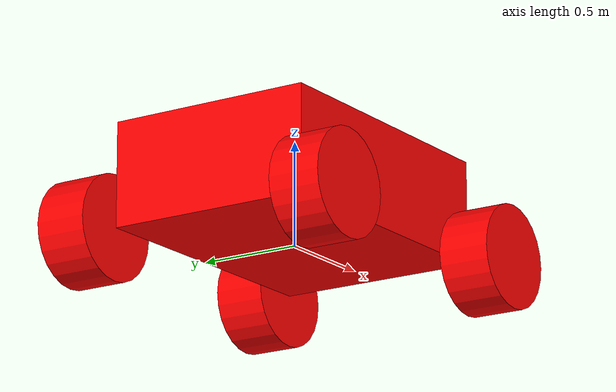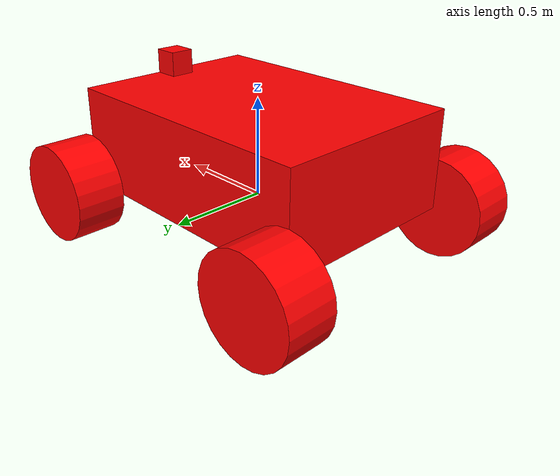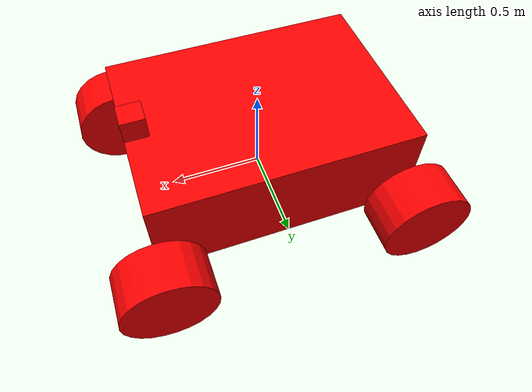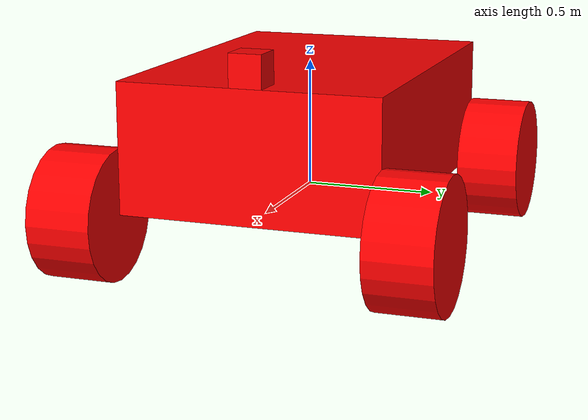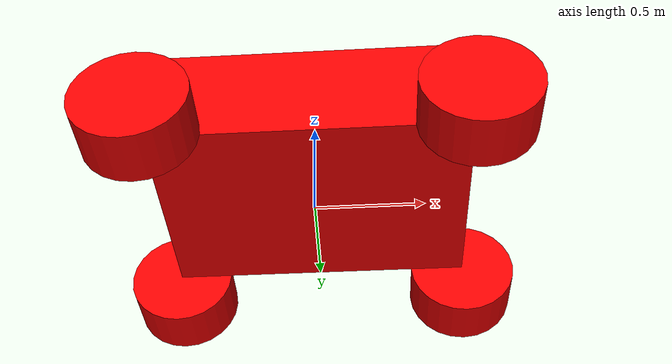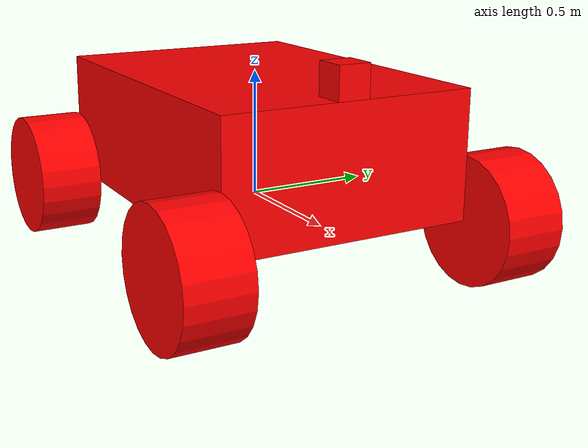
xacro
<?xml version="1.0"?>
<robot name="four_wheel_bot" xmlns:xacro="http://www.ros.org/wiki/xacro">
    <!-- ==== Parameters ==== -->
    <xacro:property name="wheel_dia" value="0.5" />
    <xacro:property name="wheel_thickness" value="0.25" />
    <!-- Dimension of chassis -->
    <xacro:property name="width" value="1.4" />     <!-- X dimension -->
    <xacro:property name="length" value="1" />    <!-- Y dimension -->
    <xacro:property name="depth" value="0.5" />    <!-- Z dimension -->
    <xacro:property name="camera_len" value="0.125" /> <!-- Camera square side length -->

    <!-- ==== Include files ==== -->
    <!-- Gazebo file include -->
    <xacro:include filename="four_wheel_bot.gazebo" />

    <!-- ==== Macros ==== -->
    <!-- Attach the wheel at Pitch -1.57079632679 -->
    <xacro:macro name="attach_wheels" params="name parent:=base_link x y z:=0 reflect">
        <!-- Parameters -->
        <!-- @name: Name of the wheel link. Actual name will be "${name}_wheel. Joint name will be wheel_${name}" -->
        <!-- @parent: Name of parent link. Default value "base_link" -->
        <!-- @x, @y and @z: Position of the wheel origin -->
        <!-- @reflect: Reflection of positioning, -1 for right sided and 1 for left sided -->
        <!-- Link definitions -->
        <link name="${name}_wheel">
            <collision>
                <origin xyz="0.0 0.0 ${reflect * wheel_thickness/2}"/>
                <geometry>
                    <cylinder radius="${wheel_dia/2}" length="${wheel_thickness}"/>
                </geometry>
            </collision>
            <visual>
                <origin xyz="0.0 0.0 ${reflect * wheel_thickness/2}"/>
                <geometry>
                    <cylinder radius="${wheel_dia/2}" length="${wheel_thickness}"/>
                </geometry>
                <material name="red" />
            </visual>
            <inertial>
            <origin xyz="0.0 0.0 0.0" rpy="0.0 0.0 0.0"/>
            <mass value="0.5"/>
            <inertia ixx="1.0" ixy="0.0" ixz="0.0"
                               iyy="1.0" iyz="0.0"
                                         izz="1.0"/>
        </inertial>
        </link>
        <!-- Joint definition -->
        <joint name="wheel_${name}" type="continuous">
            <origin xyz="${x} ${y} ${z}" rpy="-1.57079632679 0.0 0.0"/>
            <parent link="${parent}"/>
            <child link="${name}_wheel"/>
            <axis xyz="0.0 0.0 1.0"/>
        </joint>
    </xacro:macro>

    <!-- ==== Main code ==== -->
    <!-- === Links === -->
    <!-- Base link -->
    <link name="base_link">
        <collision>
            <origin xyz="0.0 0.0 ${depth/2}"/>
            <geometry>
                <box size="${width} ${length} ${depth}"/>
            </geometry>
        </collision>
        <visual>
            <origin xyz="0.0 0.0 ${depth/2}"/>
            <geometry>
                <box size="${width} ${length} ${depth}"/>
            </geometry>
            <material name="red">
                <color rgba="1.0 0.0 0.0 1.0"/>
            </material>
        </visual>
        <inertial>
            <origin xyz="0.0 0.0 0.0" rpy="0.0 0.0 0.0"/>
            <mass value="2.0"/>
            <inertia ixx="1.0" ixy="0.0" ixz="0.0"
                               iyy="1.0" iyz="0.0"
                                         izz="1.0"/>

        </inertial>
    </link>
    <!-- Front right wheel -->
    <xacro:attach_wheels name="fr" x="${width/2}" y="${-length/2}" reflect="-1" />
    <!-- Front left wheel -->
    <xacro:attach_wheels name="fl" x="${width/2}" y="${length/2}" reflect="1" />
    <!-- Back right wheel -->
    <xacro:attach_wheels name="br" x="${-width/2}" y="${-length/2}" reflect="-1" />
    <!-- Back left wheel -->
    <xacro:attach_wheels name="bl" x="${-width/2}" y="${length/2}" reflect="1" />
    <!-- Camera sensor joint -->
    <joint name="joint_name" type="fixed">
        <parent link="base_link" />
        <child link="camera_link" />
        <origin xyz="${width/2 - camera_len/2} 0.0 ${depth}" rpy="0.0 0.0 0.0" />
    </joint>
    <!-- Camera sensor link -->
    <link name="camera_link">
        <collision>
            <origin xyz="0.0 0.0 ${camera_len/2}"/>
            <geometry>
                <box size="${camera_len} ${camera_len} ${camera_len}"/>
            </geometry>
        </collision>
        <visual>
            <origin xyz="0.0 0.0 ${camera_len/2}"/>
            <geometry>
                <box size="${camera_len} ${camera_len} ${camera_len}"/>
            </geometry>
            <material name="red" />
        </visual>
        <inertial>
            <origin xyz="0.0 0.0 0.0" rpy="0.0 0.0 0.0"/>
            <mass value="0.1"/>
            <inertia ixx="1.0" ixy="0.0" ixz="0.0"
                               iyy="1.0" iyz="0.0"
                                         izz="1.0"/>

        </inertial>
    </link>
</robot>
